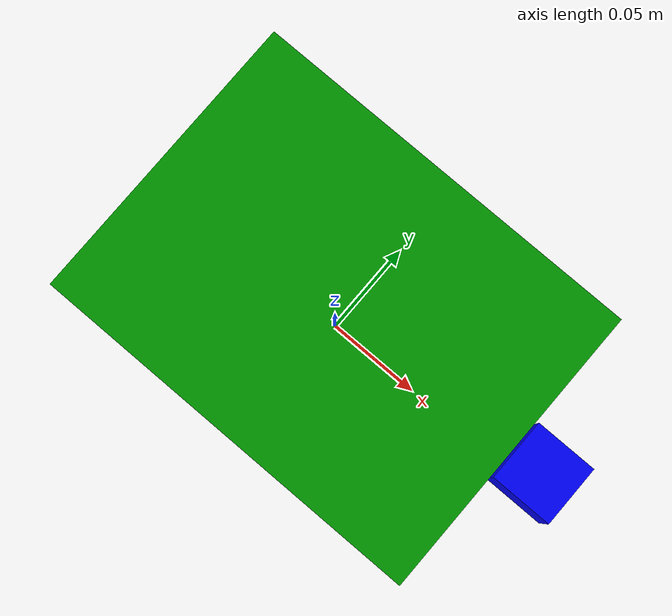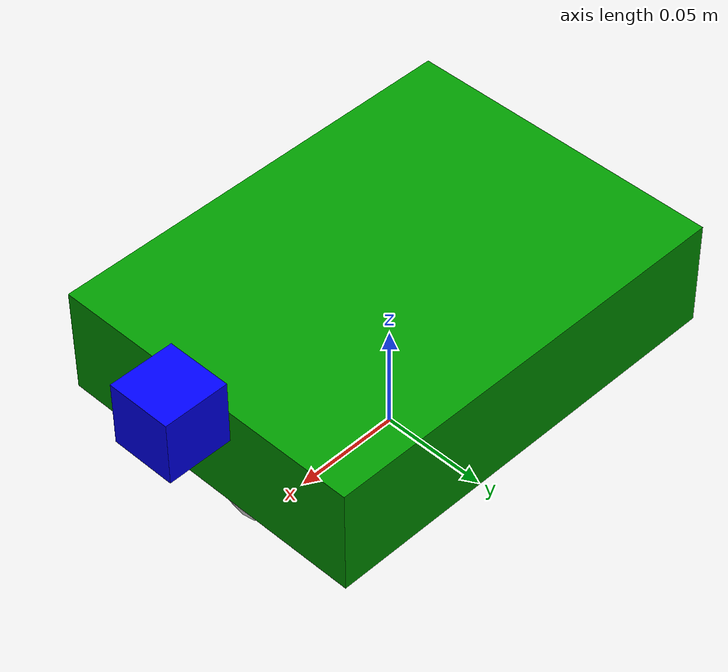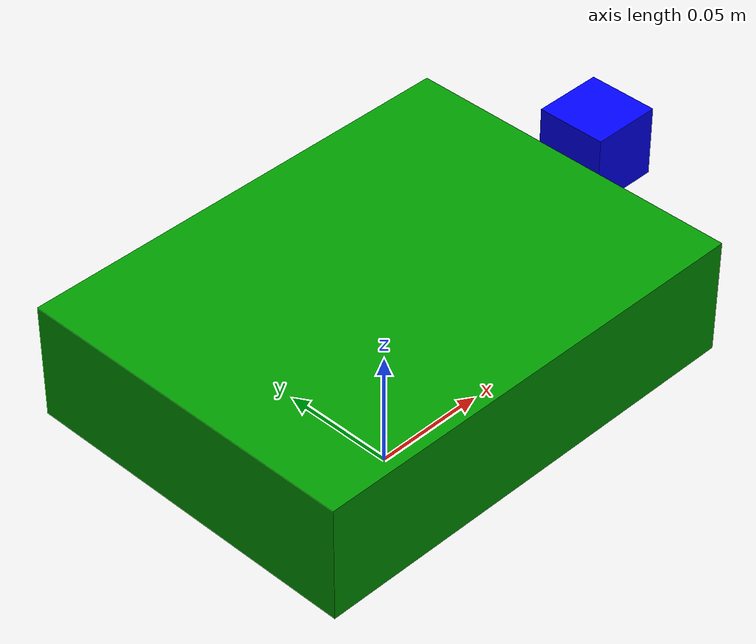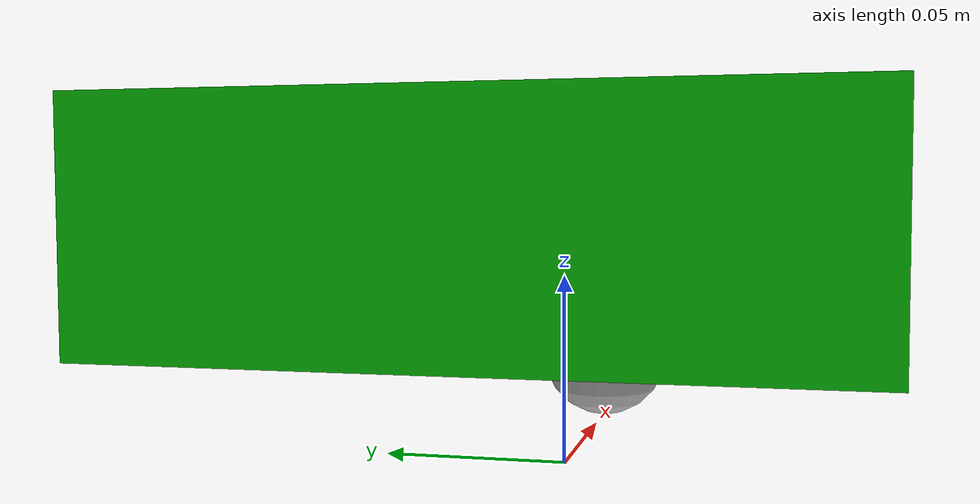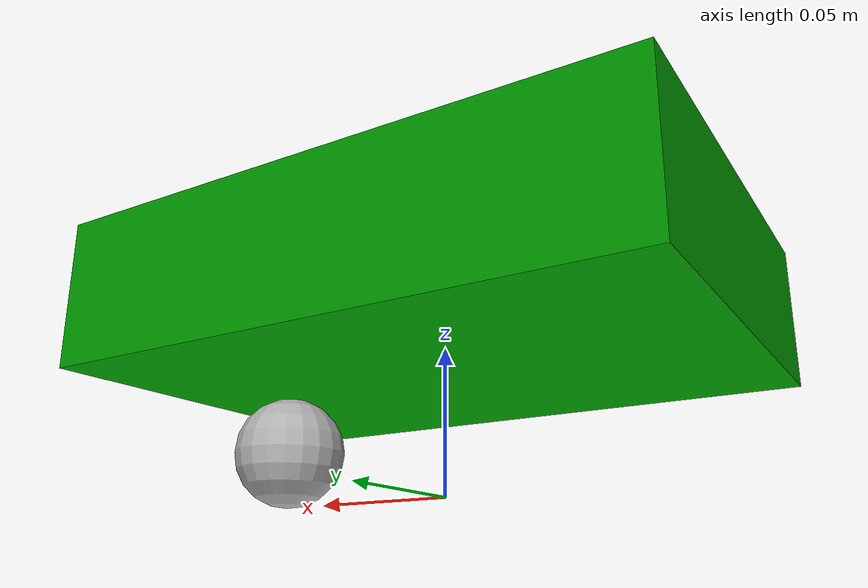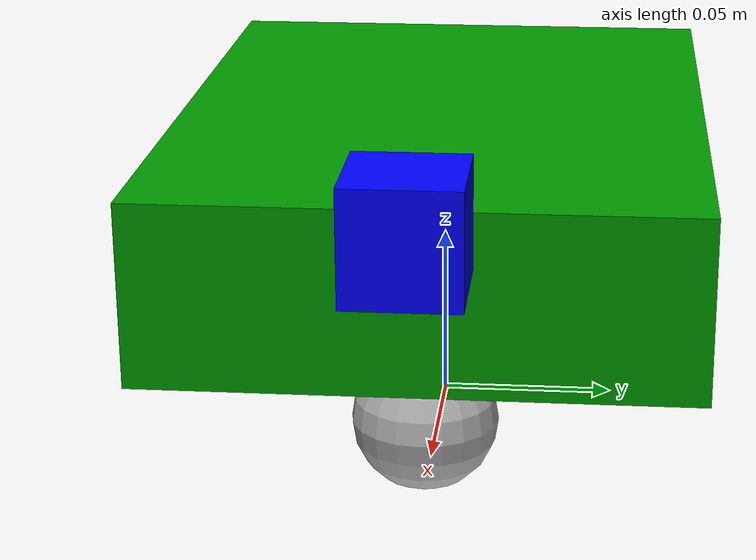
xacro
<?xml version="1.0"?>
<robot name="my_robot" xmlns:xacro="http://www.ros.org/wiki/xacro">

    <xacro:property name="base_length" value="0.2" />
    <xacro:property name="base_width" value="0.15" />
    <xacro:property name="base_height" value="0.05" />
    <xacro:property name="wheel_radius" value="0.04" />
    <xacro:property name="wheel_length" value="0.03" />

    <xacro:property name="camera_side_length" value="0.03" />

    <xacro:include filename="$(find my_robot_description)/urdf/common_properties.xacro" />
    <xacro:include filename="$(find my_robot_description)/urdf/gazebo_plugins.xacro" />

    <material name="green">
        <color rgba="0 0.6 0 1" />
    </material>

    <material name="gray">
        <color rgba="0.7 0.7 0.7 1" />
    </material>

    <material name="yellow">
        <color rgba="1.0 0.75 0 1" />
    </material>

    <material name="blue">
        <color rgba="0 0 1 1" />
    </material>

    <link name="camera_link">
        <xacro:box_inertia m="0.01" x="${camera_side_length}" y="${camera_side_length}"
        z="${camera_side_length}" o_xyz="${camera_side_length / 2} 0 0" o_rpy="0 0 0" />

        <visual>
            <geometry>
                <box size="${camera_side_length} ${camera_side_length} ${camera_side_length}" />
            </geometry>
            <origin xyz="${camera_side_length / 2} 0 0" rpy="0 0 0" />
            <material name="blue" />
        </visual>
    </link>

    <link name="base_link">
        <xacro:box_inertia m="5.0" x="${base_length}" y="${base_width}" z="${base_height}"
        o_xyz="0 0 ${base_height / 2.0}" o_rpy="0 0 0" />

        <collision>
            <origin xyz="0 0 ${base_height / 2.0}" rpy="0 0 0" />
            <geometry>
                <box size="${base_length} ${base_width} ${base_height}" />
            </geometry>
        </collision>

        <visual>
            <geometry>
                <box size="${base_length} ${base_width} ${base_height}" />
            </geometry>
            <origin xyz="0 0 ${base_height / 2.0}" rpy="0 0 0" />
            <material name="green" />
        </visual>

    </link>

    <!--TODO Adding wheels links - add "right_wheel_link" and "left_wheel_link" here-->

    <!-- End Adding wheels links -->

    <link name="caster_wheel_link">
        <xacro:sphere_inertia m="0.5" r="${wheel_radius / 2.0}"  o_xyz="0 0 0" o_rpy="0 0 0" />

        <collision>
            <origin xyz="0 0 0" rpy="0 0 0" />
            <geometry>
                <sphere radius="${wheel_radius / 2.0}" />
            </geometry>
        </collision>

        <visual>
            <geometry>
                <sphere radius="${wheel_radius / 2.0}" />
            </geometry>
            <origin xyz="0 0 0" rpy="0 0 0 " />
            <material name="gray" />
        </visual>
    </link>

    <link name="base_footprint" />

    <joint name="base_camera_joint" type="fixed">
        <parent link="base_link" />
        <child link="camera_link" />
        <origin xyz="${base_length / 2} 0 ${base_height}" rpy="0 0 0" />
    </joint>

    <!-- TODO Adding wheels joints - add a joint to the base_link for each wheel-->

    <!-- End Adding wheels joints -->

    <joint name="base_caster_wheel_joint" type="fixed">
        <parent link="base_link" />
        <child link="caster_wheel_link" />
        <origin xyz="${base_length / 3.0} 0 ${-wheel_radius / 2.0}" rpy="0 0 0" />
    </joint>

    <joint name="base_joint" type="fixed">
        <parent link="base_footprint" />
        <child link="base_link" />
        <origin xyz="0 0 ${wheel_radius}" rpy="0 0 0" />
    </joint>

    <gazebo>
        <plugin filename="gz-sim-pose-publisher-system"
            name="gz::sim::systems::PosePublisher">

            <publish_model_pose>true</publish_model_pose>
            <publish_link_pose>false</publish_link_pose>
            <publish_sensor_pose>false</publish_sensor_pose>
            <publish_collision_pose>false</publish_collision_pose>
            <publish_visual_pose>false</publish_visual_pose>

            <update_frequency>50</update_frequency>

            <use_pose_vector_msg>false</use_pose_vector_msg>

        </plugin>
    </gazebo>

</robot>

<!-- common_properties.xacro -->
<!-- In this file we store the inertia of basicshapes -->
<robot xmlns:xacro="http://www.ros.org/wiki/xacro">
    <!-- Box Inertia Macro -->
    <xacro:macro name="box_inertia" params="m x y z o_xyz o_rpy">
    <inertial>
        <mass value="${m}" />
        <origin xyz="${o_xyz}" rpy="${o_rpy}" />
        <inertia ixx="${(m/12) * (y*y + z*z)}" ixy="0" ixz="0"
                 iyy="${(m/12) * (x*x + z*z)}" iyz="0"
                 izz="${(m/12) * (x*x + y*y)}" />
    </inertial>
    </xacro:macro>

    <!-- Cylinder Inertia Macro -->
    <xacro:macro name="cylinder_inertia" params="m r l o_xyz o_rpy">
    <inertial>
        <mass value="${m}" />
        <origin xyz="${o_xyz}" rpy="${o_rpy}" />
        <inertia ixx="${(m/12) * (3*r*r + l*l)}" ixy="0" ixz="0"
                 iyy="${(m/12) * (3*r*r + l*l)}" iyz="0"
                 izz="${(m/2) * (r*r)}" />
    </inertial>
    </xacro:macro>

    <!-- Sphere Inertia Macro -->
    <xacro:macro name="sphere_inertia" params="m r o_xyz o_rpy">
    <inertial>
        <mass value="${m}" />
        <origin xyz="${o_xyz}" rpy="${o_rpy}" />
        <inertia ixx="${(2/5) * m * r * r}" ixy="0" ixz="0"
                 iyy="${(2/5) * m * r * r}" iyz="0"
                 izz="${(2/5) * m * r * r}" />
    </inertial>
    </xacro:macro>
</robot>
